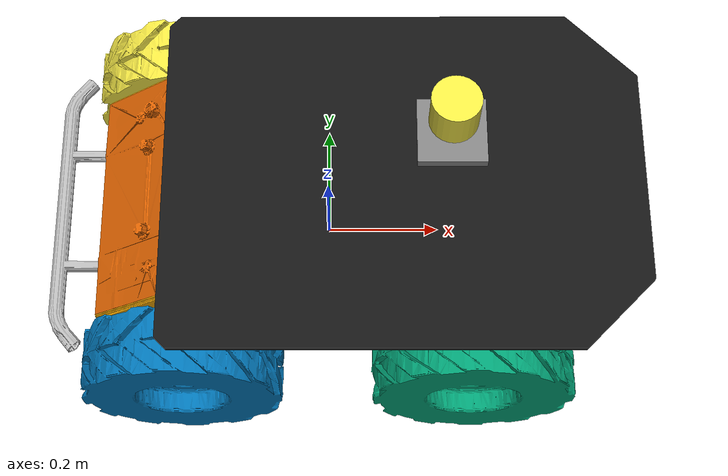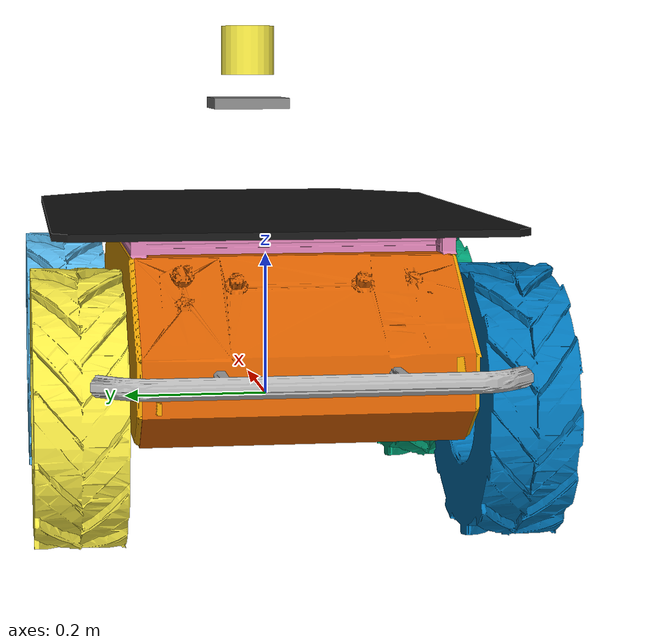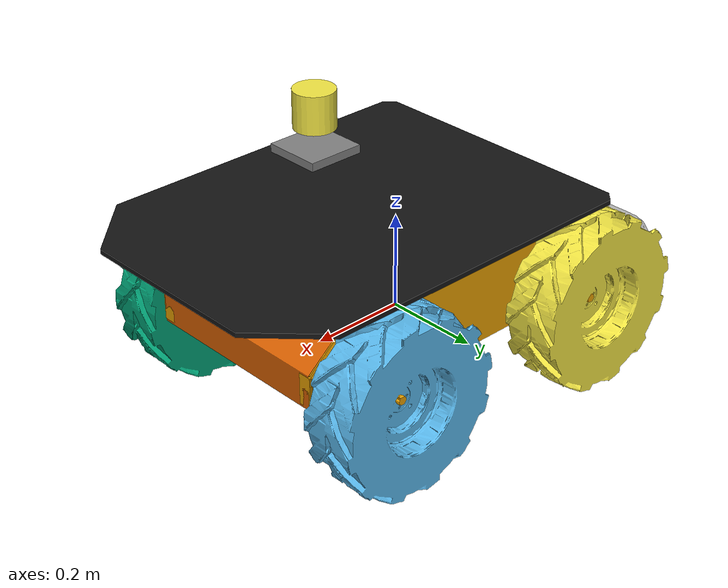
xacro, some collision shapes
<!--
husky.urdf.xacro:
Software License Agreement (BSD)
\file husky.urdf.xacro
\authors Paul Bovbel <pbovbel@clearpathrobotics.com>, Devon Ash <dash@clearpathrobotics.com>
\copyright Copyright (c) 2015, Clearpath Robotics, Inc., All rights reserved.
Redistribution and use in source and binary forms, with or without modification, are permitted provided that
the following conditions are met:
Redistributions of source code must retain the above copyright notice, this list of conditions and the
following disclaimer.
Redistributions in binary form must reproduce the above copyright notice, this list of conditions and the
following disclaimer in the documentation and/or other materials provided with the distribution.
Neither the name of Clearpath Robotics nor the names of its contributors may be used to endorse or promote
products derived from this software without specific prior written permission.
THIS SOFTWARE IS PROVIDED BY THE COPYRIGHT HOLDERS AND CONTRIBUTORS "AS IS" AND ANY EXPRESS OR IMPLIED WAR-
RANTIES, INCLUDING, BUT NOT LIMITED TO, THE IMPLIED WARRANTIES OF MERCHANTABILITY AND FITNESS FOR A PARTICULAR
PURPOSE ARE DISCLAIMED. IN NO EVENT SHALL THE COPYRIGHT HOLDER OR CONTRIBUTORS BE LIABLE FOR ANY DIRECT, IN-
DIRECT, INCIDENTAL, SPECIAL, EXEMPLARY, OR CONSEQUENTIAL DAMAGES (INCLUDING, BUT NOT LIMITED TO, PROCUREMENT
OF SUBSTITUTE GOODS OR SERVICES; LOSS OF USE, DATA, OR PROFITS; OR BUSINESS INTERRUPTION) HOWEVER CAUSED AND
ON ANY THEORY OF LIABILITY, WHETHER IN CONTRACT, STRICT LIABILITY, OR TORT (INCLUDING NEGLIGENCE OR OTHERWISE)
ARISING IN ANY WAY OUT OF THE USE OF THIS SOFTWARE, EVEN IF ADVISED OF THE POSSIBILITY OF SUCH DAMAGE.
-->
<?xml version="1.0"?>
<robot name="husky" xmlns:xacro="http://ros.org/wiki/xacro">

  <!-- 1) Husky 추가 -->
  <xacro:include filename="$(find husky_description)/urdf/husky.urdf.xacro" />

  <!-- 2) OS1-32 LiDAR 추가 -->
  <xacro:include filename="$(find dwa)/urdf/OS1-32.urdf.xacro"/>
  <xacro:OS1-32
    parent="top_chassis_link"
    name="ouster"
    topic_points="/ouster/points"
    topic_imu="/ouster/imu"
    hz="10"
    lasers="32"
    samples="512"
    min_range="0.1"
    max_range="50.0"
    noise="0.008"
    lidar_link="os1_lidar"
    imu_link="os1_imu"
    vfov_min="-.26"
    vfov_max=".26">
    <origin xyz="0.2 0 0.4" rpy="0 0 0"/>
  </xacro:OS1-32>

  <!-- 3) GPS 추가 -->

  <!-- 4) Gazebo 제어 플러그인 -->
  <gazebo>
    <!-- Husky Velocity Control Plugin -->
    <!-- ros_control과 연동하여 diff_drive_controller가 바퀴 속도 제어 -->
    <plugin name="gazebo_ros_control" filename="libgazebo_ros_control.so">
      <robotNamespace>/</robotNamespace>
      <robotSimType>husky_gazebo_plugins/HuskyVelocityControlPlugin</robotSimType>
      <wheel_diameter>0.3302</wheel_diameter>
      <max_accel>5.0</max_accel>
      <max_speed>1.0</max_speed>
    </plugin>
  </gazebo>
</robot>

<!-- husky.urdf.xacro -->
<robot name="husky" xmlns:xacro="http://ros.org/wiki/xacro">
  <!-- IMU Link -->

  <!-- LMS1XX Laser Primary and Secondary -->

  <!-- UST10 Laser Primary  and Secondary -->

  <!-- Velodyne LiDAR Primary and Secondary -->

  <!-- Realsense Camera Primary and Secondary -->

  <!-- BlackflyS Camera Primary and Secondary -->

  <!-- Bumper Extension -->
  <xacro:property name="husky_front_bumper_extend"  value="$(optenv HUSKY_FRONT_BUMPER_EXTEND 0)" />
  <xacro:property name="husky_rear_bumper_extend"   value="$(optenv HUSKY_REAR_BUMPER_EXTEND 0)" />

  <!-- Height of the sensor arch in mm.  Must be either 510 or 300 -->

  <!-- Extras -->
  <xacro:arg name="robot_namespace" default="$(optenv ROBOT_NAMESPACE /)" />
  <xacro:arg name="urdf_extras"     default="$(optenv HUSKY_URDF_EXTRAS empty.urdf)" />
  <xacro:arg name="cpr_urdf_extras" default="$(optenv CPR_URDF_EXTRAS empty.urdf)" />

  <!-- OutdoorNav -->
  <xacro:arg name="outdoornav_enabled"       default="$(optenv OUTDOORNAV_ENABLED 0)" />
  <xacro:arg name="outdoornav_configuration" default="$(optenv OUTDOORNAV_CONFIGURATION standard)" />

  <!-- Included URDF/XACRO Files -->
  <xacro:include filename="$(find husky_description)/urdf/decorations.urdf.xacro" />
  <xacro:include filename="$(find husky_description)/urdf/wheel.urdf.xacro" />

  <xacro:property name="M_PI" value="3.14159"/>

  <!-- Base Size -->
  <xacro:property name="base_x_size" value="0.98740000" />
  <xacro:property name="base_y_size" value="0.57090000" />
  <xacro:property name="base_z_size" value="0.24750000" />

  <!-- Wheel Mounting Positions -->
  <xacro:property name="wheelbase" value="0.5120" />
  <xacro:property name="track" value="0.555" />
  <xacro:property name="wheel_vertical_offset" value="0.03282" />

  <!-- Wheel Properties -->
  <xacro:property name="wheel_length" value="0.1143" />
  <xacro:property name="wheel_radius" value="0.1651" />

  <!-- Base link is the center of the robot's bottom plate -->
  <link name="base_link">
    <visual>
      <origin xyz="0 0 0" rpy="0 0 0" />
      <geometry>
        <mesh filename="package://husky_description/meshes/base_link.dae" />
      </geometry>
    </visual>
    <collision>
      <origin xyz="${( husky_front_bumper_extend - husky_rear_bumper_extend ) / 2.0} 0 ${base_z_size/4}" rpy="0 0 0" />
      <geometry>
        <box size="${ base_x_size + husky_front_bumper_extend + husky_rear_bumper_extend } ${base_y_size} ${base_z_size/2}"/>
      </geometry>
    </collision>
    <collision>
      <origin xyz="0 0 ${base_z_size*3/4-0.01}" rpy="0 0 0" />
      <geometry>
        <box size="${base_x_size*4/5} ${base_y_size} ${base_z_size/2-0.02}"/>
      </geometry>
    </collision>
  </link>

  <!-- Base footprint is on the ground under the robot -->

  <!-- Inertial link stores the robot's inertial information -->

  <!-- Husky wheel macros -->
  <xacro:husky_wheel wheel_prefix="front_left">
    <origin xyz="${wheelbase/2} ${track/2} ${wheel_vertical_offset}" rpy="0 0 0" />
  </xacro:husky_wheel>
  <xacro:husky_wheel wheel_prefix="front_right">
    <origin xyz="${wheelbase/2} ${-track/2} ${wheel_vertical_offset}" rpy="0 0 0" />
  </xacro:husky_wheel>
  <xacro:husky_wheel wheel_prefix="rear_left">
    <origin xyz="${-wheelbase/2} ${track/2} ${wheel_vertical_offset}" rpy="0 0 0" />
  </xacro:husky_wheel>
  <xacro:husky_wheel wheel_prefix="rear_right">
    <origin xyz="${-wheelbase/2} ${-track/2} ${wheel_vertical_offset}" rpy="0 0 0" />
  </xacro:husky_wheel>

  <!-- Husky Decorations -->
  <xacro:husky_decorate />

  <!--
    Add the main sensor arch if the user has specifically enabled it, or if a sensor
    requires it for mounting
  -->

  <!--
      IMU Link: Standard location to add an IMU (i.e. UM7 or Microstrain)
  -->

  <!--
    SICK LMS1XX Priamry and Secondary Laser Scans
  -->

  <!--
    Hokuyo UST10 Primary and Secondary Laser Scans
  -->

  <!-- Intel Realsense Primary and Secondary -->

  <!-- BlackflyS Camera Primary and Secondary -->

  <!--
    Velodyne 3D LiDAR Primary and Secondary
  -->

  <!-- OutdoorNav URDF Config -->

  <!-- Optional custom includes. -->

  <!-- Optional for Clearpath internal softwares -->

</robot>

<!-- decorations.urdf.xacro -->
<robot name="husky_decorations" xmlns:xacro="http://ros.org/wiki/xacro">

  <xacro:macro name="husky_decorate">

    <!-- Spawn Husky chassis -->
    <link name="top_chassis_link">
      <visual>
        <origin xyz="0 0 0" rpy="0 0 0" />
        <geometry>
          <mesh filename="package://husky_description/meshes/top_chassis.dae" />
        </geometry>
      </visual>
    </link>

    <!-- Attach chassis to the robot -->
    <joint name="top_chassis_joint" type="fixed">
      <parent link="base_link" />
      <child link="top_chassis_link" />
    </joint>

    <!-- Spawn user rails -->
    <link name="user_rail_link">
      <visual>
        <geometry>
          <mesh filename="package://husky_description/meshes/user_rail.dae" />
        </geometry>
      </visual>
    </link>

    <!-- Attach user rails to base link -->
    <joint name="user_rail" type="fixed">
      <origin xyz="0.272 0 0.245" rpy="0 0 0" />
      <parent link="base_link" />
      <child link="user_rail_link" />
    </joint>

    <!-- Spawn rear bumper link -->
    <link name="rear_bumper_link">
      <visual>
        <geometry>
          <mesh filename="package://husky_description/meshes/bumper.dae" />
        </geometry>
      </visual>
    </link>

    <!-- Attach rear bumper -->
    <joint name="rear_bumper" type="fixed">
      <origin xyz="-0.48 0 0.091" rpy="0 0 ${M_PI}" />
      <parent link="base_link" />
      <child link="rear_bumper_link" />
    </joint>

    <xacro:if value="$(optenv HUSKY_TOP_PLATE_ENABLED true)">
      <!-- Spawn the top plate -->
      <link name="top_plate_link">
        <visual>
          <origin xyz="0 0 0" rpy="0 0 0" />
          <geometry>
            <mesh filename="package://husky_description/meshes/top_plate.dae" />
          </geometry>
        </visual>
        <collision>
          <origin xyz="0 0 0" rpy="0 0 0"/>
          <geometry>
            <mesh filename="package://husky_description/meshes/top_plate.stl" />
          </geometry>
        </collision>
        <collision>
          <!-- Extra collision tag for widgets on top plate -->
          <geometry>
            <box size="0.32 0.41 0.09" rpy="0 0 0"/>
          </geometry>
        </collision>
      </link>

      <!-- Attach top plate -->
      <joint name="top_plate_joint" type="fixed">
        <parent link="base_link" />
        <child link="top_plate_link"/>
        <origin xyz="0.0812 0 0.245" rpy="0 0 0"/>
      </joint>
    </xacro:if>

  </xacro:macro>

</robot>

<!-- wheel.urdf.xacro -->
<robot xmlns:xacro="http://ros.org/wiki/xacro" name="husky_wheel">

	<xacro:macro name="husky_wheel" params="wheel_prefix *joint_pose">
		<link name="${wheel_prefix}_wheel_link">
			<inertial>
				<mass value="2.637" />
				<origin xyz="0 0 0" />
				<inertia  ixx="0.02467" ixy="0" ixz="0" iyy="0.04411" iyz="0" izz="0.02467" />
			</inertial>
			<visual>
				<origin xyz="0 0 0" rpy="0 0 0" />
				<geometry>
					<mesh filename="package://husky_description/meshes/wheel.dae" />
				</geometry>
			</visual>
			<collision>
				<origin xyz="0 0 0" rpy="${M_PI/2} 0 0" />
				<geometry>
					<cylinder length="${wheel_length}" radius="${wheel_radius}" />
				</geometry>
			</collision>
		</link>

		<gazebo reference="${wheel_prefix}_wheel_link">
			<mu1 value="1.0"/>
			<mu2 value="1.0"/>
			<kp value="10000000.0" />
			<kd value="1.0" />
			<fdir1 value="1 0 0"/>
		</gazebo>

		<joint name="${wheel_prefix}_wheel" type="continuous">
			<parent link="base_link"/>
			<child link="${wheel_prefix}_wheel_link"/>
			<xacro:insert_block name="joint_pose"/>
			<axis xyz="0 1 0" rpy="0 0 0" />
		</joint>

		<!-- Transmission 제거: Gazebo Skid Steer Plugin이 직접 바퀴 제어 -->
		<!-- 실제 로봇과 동일하게 좌/우 2개 속도로 4개 바퀴 제어 -->

	</xacro:macro>
</robot>

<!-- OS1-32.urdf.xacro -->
<robot xmlns:xacro="http://www.ros.org/wiki/xacro" name="OS1-32">
  <xacro:property name="M_PI" value="3.1415926535897931" />
  <xacro:macro name="OS1-32" params="*origin parent:=base_link name:=os_sensor topic_points:=/ouster/points topic_imu:=/ouster/imu hz:=10 lasers:=32 samples:=512 min_range:=0.3 max_range:=75.0 noise:=0.008 min_angle:=-${M_PI} max_angle:=${M_PI} lidar_link:=os_lidar imu_link:=os_imu vfov_min:=-.393 vfov_max:=.393 gpu:=true">

    <joint name="${name}_mount_joint" type="fixed">
      <xacro:insert_block name="origin" />
      <parent link="${parent}"/>
      <child link="${name}_base_link"/>
    </joint>

    <link name="${name}_base_link" />

    <joint name="${name}_base_to_baseplate" type="fixed">
      <parent link="${name}_base_link"/>
      <child link="${name}_baseplate" />
      <origin xyz="0 0 0.008"/>
    </joint>

    <link name="${name}_baseplate">
      <visual>
        <geometry>
          <box size="0.112 0.112 0.016" />
        </geometry>
        <material name="silver">
          <color rgba="0.5 0.5 0.5 1.0" />
        </material>
      </visual>
      <collision>
        <geometry>
          <box size="0.112 0.112 0.016" />
        </geometry>
      </collision>
    </link>

    <joint name="${name}_baseplate_to_body" type="fixed">
      <parent link="${name}_baseplate"/>
      <child link="${name}"/>
      <origin xyz="0 0 0.042" rpy="0 0 0" />
    </joint>

    <link name="${name}">
      <inertial>
         <mass value="0.33"/>
         <origin xyz="0 0 0.0365" rpy="0 0 0" />
         <inertia ixx="0.000241148" ixy="0" ixz="0"
          iyy="0.000241148" iyz="0" izz="0.000264"/>
      </inertial>
      <collision name="base_collision">
         <origin xyz="0 0 0.0365" rpy="0 0 0" />
         <geometry>
 	        <cylinder radius="0.04" length="0.073"/>
         </geometry>
      </collision>
      <visual name="base_visual">
         <origin xyz="0 0 0.0" rpy="0 0 1.5707" />
         <geometry>
	         <mesh filename="package://dwa/meshes/os1_64.dae" />
         </geometry>
      </visual>
    </link>

    <link name="${imu_link}" />

    <link name="${lidar_link}" />

    <joint name="${name}_imu_link_joint" type="fixed">
      <parent link="${name}" />
      <child link="${imu_link}" />
      <origin xyz="0.006253 -0.011775 0.007645" rpy="0 0 0" />
    </joint>
    <gazebo reference="${imu_link}">
    </gazebo>

    <joint name="${name}_lidar_link_joint" type="fixed">
      <parent link="${name}" />
      <child link="${lidar_link}" />
      <origin xyz="0.0 0.0 0.03618" rpy="0 0 0" />
    </joint>

    <!-- Gazebo Ouster plugin (Gepetto 방식 - GPU 옵션 지원) -->
    <gazebo reference="${name}">
        <xacro:if value="${gpu}">
          <sensor type="gpu_ray" name="${name}-OS1-32">
            <pose>0 0 0 0 0 0</pose>
            <visualize>false</visualize>
            <update_rate>${hz}</update_rate>
            <ray>
              <scan>
                <horizontal>
                  <samples>${samples}</samples>
                  <resolution>1</resolution>
                  <min_angle>${min_angle}</min_angle>
                  <max_angle>${max_angle}</max_angle>
                </horizontal>
                <vertical>
                  <samples>${lasers}</samples>
                  <resolution>1</resolution>
                  <min_angle>${vfov_min}</min_angle>
                  <max_angle>${vfov_max}</max_angle>
                </vertical>
              </scan>
              <range>
                <min>${min_range}</min>
                <max>${max_range}</max>
                <resolution>0.03</resolution>
              </range>
            </ray>
            <plugin name="gazebo_ros_laser_controller" filename="libgazebo_ros_ouster_gpu_laser.so">
              <topicName>${topic_points}</topicName>
              <frameName>${lidar_link}</frameName>
              <min_range>${min_range}</min_range>
              <max_range>${max_range}</max_range>
              <gaussianNoise>${noise}</gaussianNoise>
            </plugin>
          </sensor>
        </xacro:if>
        <xacro:unless value="${gpu}">
          <sensor type="ray" name="${name}-OS1-32">
            <pose>0 0 0 0 0 0</pose>
            <visualize>false</visualize>
            <update_rate>${hz}</update_rate>
            <ray>
              <scan>
                <horizontal>
                  <samples>${samples}</samples>
                  <resolution>1</resolution>
                  <min_angle>${min_angle}</min_angle>
                  <max_angle>${max_angle}</max_angle>
                </horizontal>
                <vertical>
                  <samples>${lasers}</samples>
                  <resolution>1</resolution>
                  <min_angle>${vfov_min}</min_angle>
                  <max_angle>${vfov_max}</max_angle>
                </vertical>
              </scan>
              <range>
                <min>${min_range}</min>
                <max>${max_range}</max>
                <resolution>0.03</resolution>
              </range>
            </ray>
            <plugin name="gazebo_ros_laser_controller" filename="libgazebo_ros_ouster_laser.so">
              <topicName>${topic_points}</topicName>
              <frameName>${lidar_link}</frameName>
              <min_range>${min_range}</min_range>
              <max_range>${max_range}</max_range>
              <gaussianNoise>${noise}</gaussianNoise>
            </plugin>
          </sensor>
        </xacro:unless>
    </gazebo>

    <!-- IMU -->
  <gazebo>
    <plugin name="imu_controller" filename="libhector_gazebo_ros_imu.so">
      <robotNamespace>/</robotNamespace>
      <updateRate>100.0</updateRate>
      <bodyName>${imu_link}</bodyName>
      <topicName>${topic_imu}</topicName>
      <accelDrift>0.005 0.005 0.005</accelDrift>
      <accelGaussianNoise>0.005 0.005 0.005</accelGaussianNoise>
      <rateDrift>0.005 0.005 0.005 </rateDrift>
      <rateGaussianNoise>0.005 0.005 0.005 </rateGaussianNoise>
      <headingDrift>0.005</headingDrift>
      <headingGaussianNoise>0.005</headingGaussianNoise>
    </plugin>
  </gazebo>

  </xacro:macro>
</robot>
